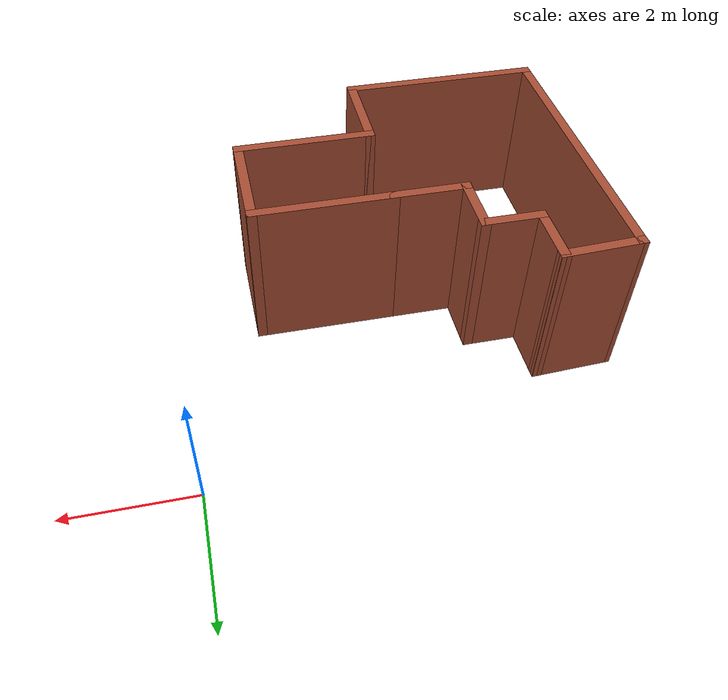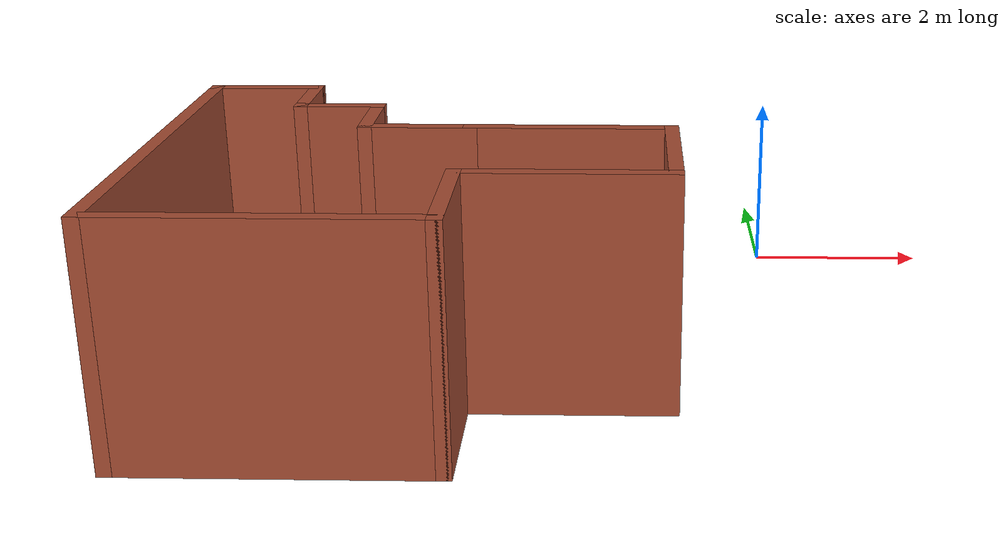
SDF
<?xml version='1.0'?>
<sdf version='1.7'>
  <model name='wall'>
    <pose>-3.24909 -2.9475 0 0 -0 0</pose>
    <link name='Wall_1'>
      <collision name='Wall_1_Collision'>
        <geometry>
          <box>
            <size>4.75 0.15 2.5</size>
          </box>
        </geometry>
        <pose>0 0 1.25 0 -0 0</pose>
      </collision>
      <visual name='Wall_1_Visual'>
        <pose>0 0 1.25 0 -0 0</pose>
        <geometry>
          <box>
            <size>4.75 0.15 2.5</size>
          </box>
        </geometry>
        <material>
          <script>
            <uri>file://media/materials/scripts/gazebo.material</uri>
            <name>Gazebo/Bricks</name>
          </script>
          <ambient>1 1 1 1</ambient>
        </material>
        <meta>
          <layer>0</layer>
        </meta>
      </visual>
      <pose>-3.17091 -0.5725 0 0 -0 -1.5708</pose>
    </link>
    <link name='Wall_10'>
      <collision name='Wall_10_Collision'>
        <geometry>
          <box>
            <size>2.25 0.15 2.5</size>
          </box>
        </geometry>
        <pose>0 0 1.25 0 -0 0</pose>
      </collision>
      <visual name='Wall_10_Visual'>
        <pose>0 0 1.25 0 -0 0</pose>
        <geometry>
          <box>
            <size>2.25 0.15 2.5</size>
          </box>
        </geometry>
        <material>
          <script>
            <uri>file://media/materials/scripts/gazebo.material</uri>
            <name>Gazebo/Bricks</name>
          </script>
          <ambient>1 1 1 1</ambient>
        </material>
        <meta>
          <layer>0</layer>
        </meta>
      </visual>
      <pose>0.979094 -1.5225 0 0 -0 0</pose>
    </link>
    <link name='Wall_11'>
      <collision name='Wall_11_Collision'>
        <geometry>
          <box>
            <size>1.75 0.15 2.5</size>
          </box>
        </geometry>
        <pose>0 0 1.25 0 -0 0</pose>
      </collision>
      <visual name='Wall_11_Visual'>
        <pose>0 0 1.25 0 -0 0</pose>
        <geometry>
          <box>
            <size>1.75 0.15 2.5</size>
          </box>
        </geometry>
        <material>
          <script>
            <uri>file://media/materials/scripts/gazebo.material</uri>
            <name>Gazebo/Bricks</name>
          </script>
          <ambient>1 1 1 1</ambient>
        </material>
        <meta>
          <layer>0</layer>
        </meta>
      </visual>
      <pose>2.02909 -0.7225 0 0 -0 1.5708</pose>
    </link>
    <link name='Wall_12'>
      <collision name='Wall_12_Collision'>
        <geometry>
          <box>
            <size>2.25 0.15 2.5</size>
          </box>
        </geometry>
        <pose>0 0 1.25 0 -0 0</pose>
      </collision>
      <visual name='Wall_12_Visual'>
        <pose>0 0 1.25 0 -0 0</pose>
        <geometry>
          <box>
            <size>2.25 0.15 2.5</size>
          </box>
        </geometry>
        <material>
          <script>
            <uri>file://media/materials/scripts/gazebo.material</uri>
            <name>Gazebo/Bricks</name>
          </script>
          <ambient>1 1 1 1</ambient>
        </material>
        <meta>
          <layer>0</layer>
        </meta>
      </visual>
      <pose>0.979094 0.0775 0 0 -0 3.14159</pose>
    </link>
    <link name='Wall_13'>
      <collision name='Wall_13_Collision'>
        <geometry>
          <box>
            <size>1.25 0.15 2.5</size>
          </box>
        </geometry>
        <pose>0 0 1.25 0 -0 0</pose>
      </collision>
      <visual name='Wall_13_Visual'>
        <pose>0 0 1.25 0 -0 0</pose>
        <geometry>
          <box>
            <size>1.25 0.15 2.5</size>
          </box>
        </geometry>
        <material>
          <script>
            <uri>file://media/materials/scripts/gazebo.material</uri>
            <name>Gazebo/Bricks</name>
          </script>
          <ambient>1 1 1 1</ambient>
        </material>
        <meta>
          <layer>0</layer>
        </meta>
      </visual>
      <pose>-0.620906 0.0775 0 0 -0 3.14159</pose>
    </link>
    <link name='Wall_14'>
      <collision name='Wall_14_Collision'>
        <geometry>
          <box>
            <size>1 0.15 2.5</size>
          </box>
        </geometry>
        <pose>0 0 1.25 0 -0 0</pose>
      </collision>
      <visual name='Wall_14_Visual'>
        <pose>0 0 1.25 0 -0 0</pose>
        <geometry>
          <box>
            <size>1 0.15 2.5</size>
          </box>
        </geometry>
        <material>
          <script>
            <uri>file://media/materials/scripts/gazebo.material</uri>
            <name>Gazebo/Bricks</name>
          </script>
          <ambient>1 1 1 1</ambient>
        </material>
        <meta>
          <layer>0</layer>
        </meta>
      </visual>
      <pose>-1.17091 0.5025 0 0 -0 1.5708</pose>
    </link>
    <link name='Wall_15'>
      <collision name='Wall_15_Collision'>
        <geometry>
          <box>
            <size>1 0.15 2.5</size>
          </box>
        </geometry>
        <pose>0 0 1.25 0 -0 0</pose>
      </collision>
      <visual name='Wall_15_Visual'>
        <pose>0 0 1.25 0 -0 0</pose>
        <geometry>
          <box>
            <size>1 0.15 2.5</size>
          </box>
        </geometry>
        <material>
          <script>
            <uri>file://media/materials/scripts/gazebo.material</uri>
            <name>Gazebo/Bricks</name>
          </script>
          <ambient>1 1 1 1</ambient>
        </material>
        <meta>
          <layer>0</layer>
        </meta>
      </visual>
      <pose>-1.59591 0.9275 0 0 -0 3.14159</pose>
    </link>
    <link name='Wall_16'>
      <collision name='Wall_16_Collision'>
        <geometry>
          <box>
            <size>1 0.15 2.5</size>
          </box>
        </geometry>
        <pose>0 0 1.25 0 -0 0</pose>
      </collision>
      <visual name='Wall_16_Visual'>
        <pose>0 0 1.25 0 -0 0</pose>
        <geometry>
          <box>
            <size>1 0.15 2.5</size>
          </box>
        </geometry>
        <material>
          <script>
            <uri>file://media/materials/scripts/gazebo.material</uri>
            <name>Gazebo/Bricks</name>
          </script>
          <ambient>1 1 1 1</ambient>
        </material>
        <meta>
          <layer>0</layer>
        </meta>
      </visual>
      <pose>-2.02091 1.3525 0 0 -0 1.5708</pose>
    </link>
    <link name='Wall_17'>
      <collision name='Wall_17_Collision'>
        <geometry>
          <box>
            <size>1.30109 0.15 2.5</size>
          </box>
        </geometry>
        <pose>0 0 1.25 0 -0 0</pose>
      </collision>
      <visual name='Wall_17_Visual'>
        <pose>0 0 1.25 0 -0 0</pose>
        <geometry>
          <box>
            <size>1.30109 0.15 2.5</size>
          </box>
        </geometry>
        <material>
          <script>
            <uri>file://media/materials/scripts/gazebo.material</uri>
            <name>Gazebo/Bricks</name>
          </script>
          <ambient>1 1 1 1</ambient>
        </material>
        <meta>
          <layer>0</layer>
        </meta>
      </visual>
      <pose>-2.59591 1.7525 0 0 -0 -3.09814</pose>
    </link>
    <link name='Wall_8'>
      <collision name='Wall_8_Collision'>
        <geometry>
          <box>
            <size>3.25 0.15 2.5</size>
          </box>
        </geometry>
        <pose>0 0 1.25 0 -0 0</pose>
      </collision>
      <visual name='Wall_8_Visual'>
        <pose>0 0 1.25 0 -0 0</pose>
        <geometry>
          <box>
            <size>3.25 0.15 2.5</size>
          </box>
        </geometry>
        <material>
          <script>
            <uri>file://media/materials/scripts/gazebo.material</uri>
            <name>Gazebo/Bricks</name>
          </script>
          <ambient>1 1 1 1</ambient>
        </material>
        <meta>
          <layer>0</layer>
        </meta>
      </visual>
      <pose>-1.62091 -2.8725 0 0 -0 0</pose>
    </link>
    <link name='Wall_9'>
      <collision name='Wall_9_Collision'>
        <geometry>
          <box>
            <size>1.5 0.15 2.5</size>
          </box>
        </geometry>
        <pose>0 0 1.25 0 -0 0</pose>
      </collision>
      <visual name='Wall_9_Visual'>
        <pose>0 0 1.25 0 -0 0</pose>
        <geometry>
          <box>
            <size>1.5 0.15 2.5</size>
          </box>
        </geometry>
        <material>
          <script>
            <uri>file://media/materials/scripts/gazebo.material</uri>
            <name>Gazebo/Bricks</name>
          </script>
          <ambient>1 1 1 1</ambient>
        </material>
        <meta>
          <layer>0</layer>
        </meta>
      </visual>
      <pose>-0.070906 -2.1975 0 0 -0 1.5708</pose>
    </link>
    <static>1</static>
  </model>
</sdf>
